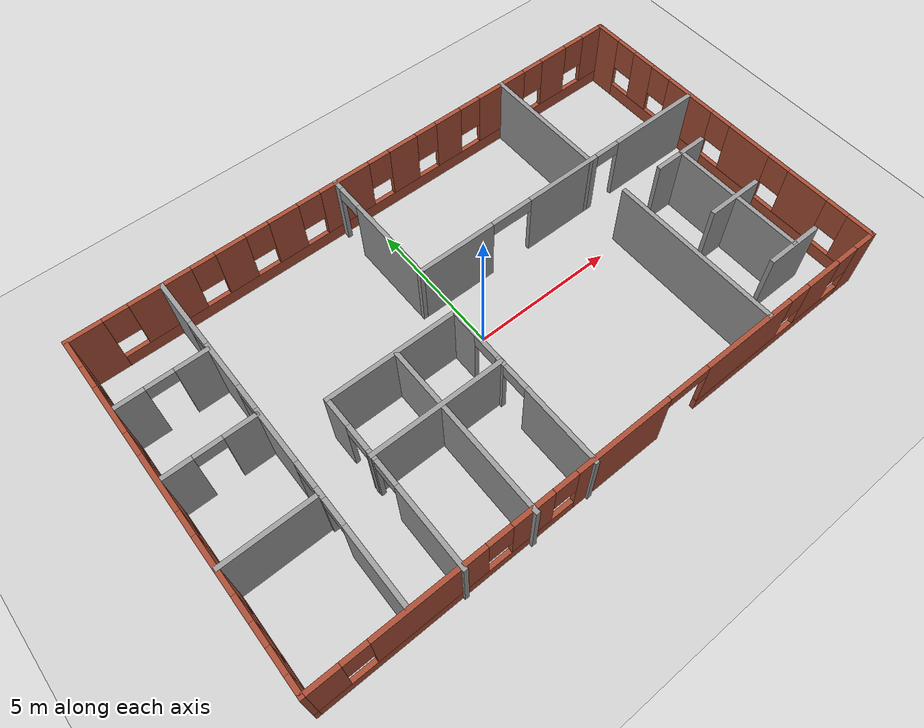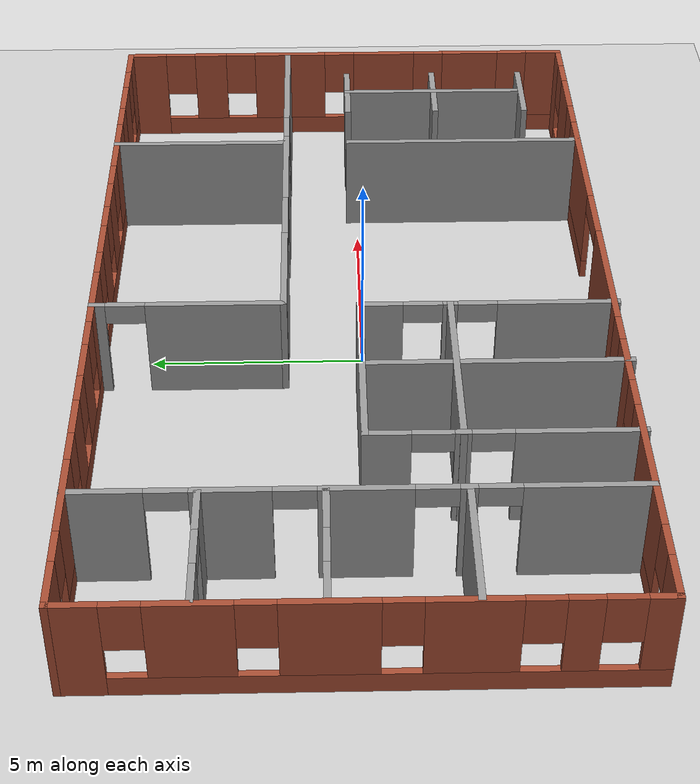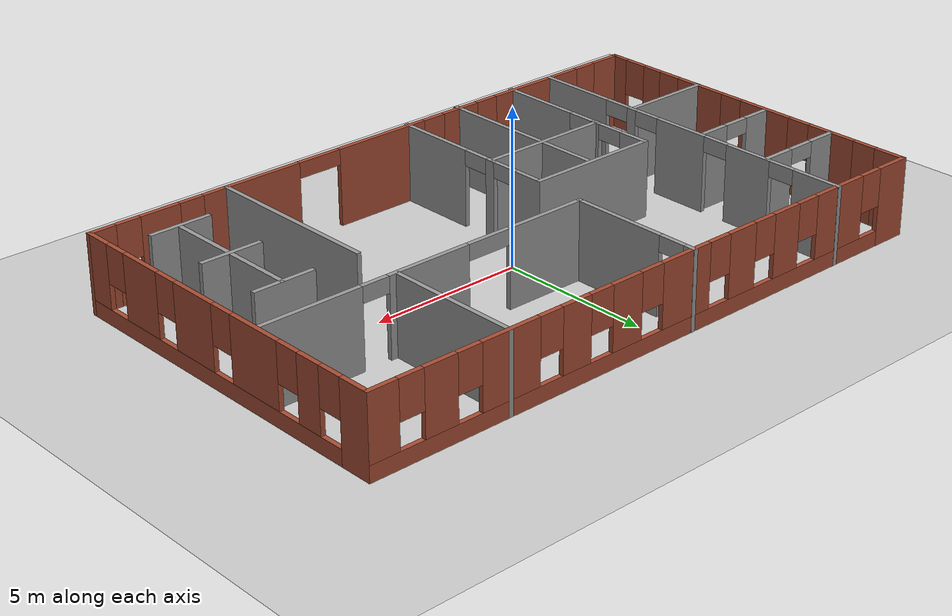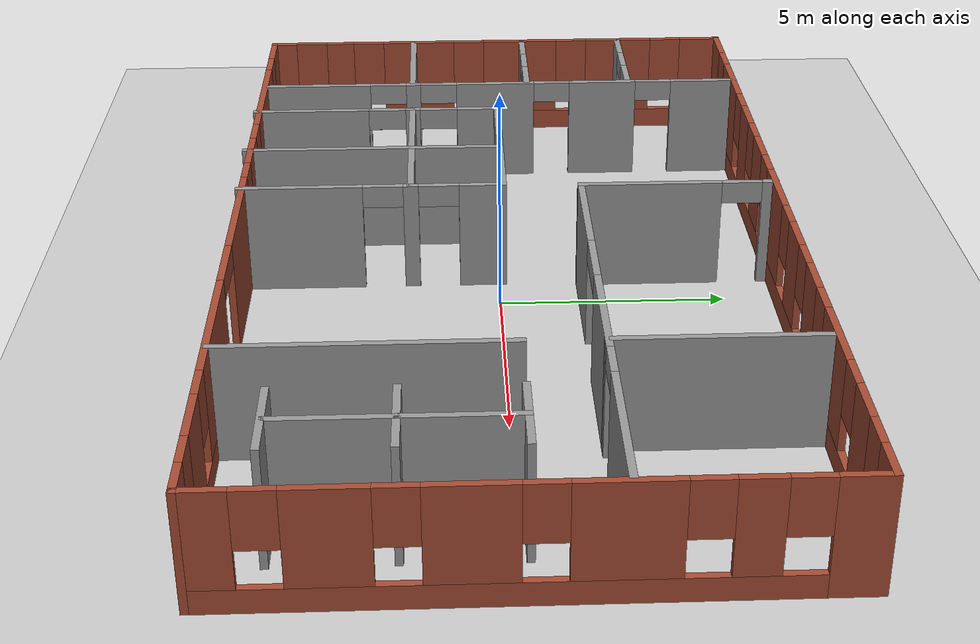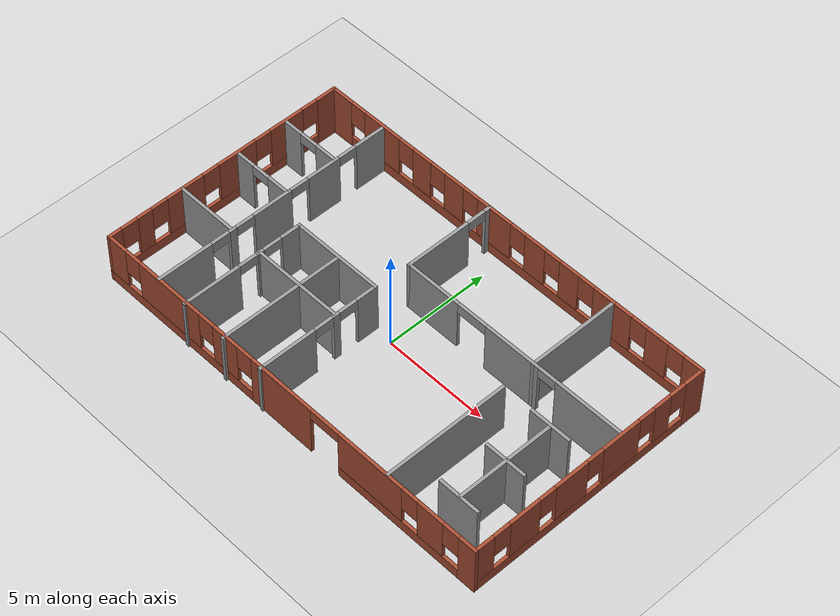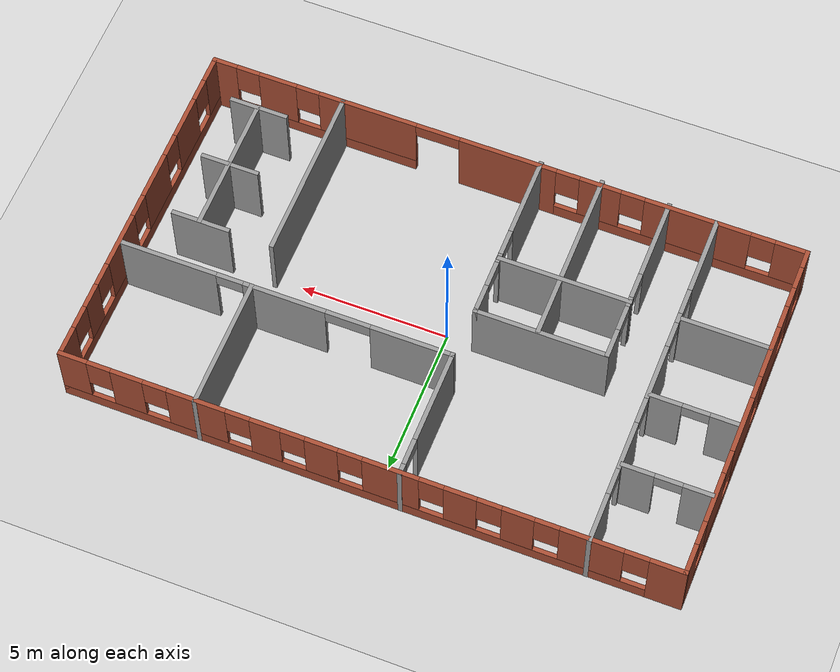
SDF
<sdf version="1.6">
 <world name="default">
  <model name="ground_plane">
   <static>1</static>
   <link name="link">
    <collision name="collision">
     <geometry><plane><normal>0 0 1</normal><size>100 100</size></plane></geometry>
     <surface>
      <contact><collide_bitmask>65535</collide_bitmask></contact>
      <friction><ode><mu>100</mu><mu2>50</mu2></ode></friction>
     </surface>
    </collision>
    <visual name="visual">
     <cast_shadows>0</cast_shadows>
     <geometry><plane><normal>0 0 1</normal><size>100 100</size></plane></geometry>
     <material>
      <script><uri>file://media/materials/scripts/gazebo.material</uri><name>Gazebo/Grey</name></script>
     </material>
    </visual>
   </link>
  </model>
  <model name="model-02">
   <pose>0.22575 0.187769 0 0 -0 0</pose>
   <link name="Wall_0">
    <pose>-10.175 0.053057 0 0 0 -1.5708</pose>
    <visual name="Wall_0_Visual_0">
     <pose>-5.46659 0 1.25 0 -0 0</pose>
     <geometry><box><size>1.06682 0.15 2.5</size></box></geometry>
     <material>
      <script><uri>file://media/materials/scripts/gazebo.material</uri><name>Gazebo/Bricks</name></script>
      <ambient>1 1 1 1</ambient>
     </material>
     <meta><layer>0</layer></meta>
    </visual>
    <collision name="Wall_0_Collision_0">
     <geometry><box><size>1.06682 0.15 2.5</size></box></geometry>
     <pose>-5.46659 0 1.25 0 -0 0</pose>
    </collision>
    <visual name="Wall_0_Visual_1">
     <pose>0.53341 0 0.25 0 -0 0</pose>
     <geometry><box><size>10.9332 0.15 0.5</size></box></geometry>
     <material>
      <script><uri>file://media/materials/scripts/gazebo.material</uri><name>Gazebo/Bricks</name></script>
      <ambient>1 1 1 1</ambient>
     </material>
     <meta><layer>0</layer></meta>
    </visual>
    <collision name="Wall_0_Collision_1">
     <geometry><box><size>10.9332 0.15 0.5</size></box></geometry>
     <pose>0.53341 0 0.25 0 -0 0</pose>
    </collision>
    <visual name="Wall_0_Visual_2">
     <pose>-3.26711 0 1.5 0 -0 0</pose>
     <geometry><box><size>1.73215 0.15 2</size></box></geometry>
     <material>
      <script><uri>file://media/materials/scripts/gazebo.material</uri><name>Gazebo/Bricks</name></script>
      <ambient>1 1 1 1</ambient>
     </material>
     <meta><layer>0</layer></meta>
    </visual>
    <collision name="Wall_0_Collision_2">
     <geometry><box><size>1.73215 0.15 2</size></box></geometry>
     <pose>-3.26711 0 1.5 0 -0 0</pose>
    </collision>
    <visual name="Wall_0_Visual_3">
     <pose>-0.625092 0 1.5 0 -0 0</pose>
     <geometry><box><size>1.95188 0.15 2</size></box></geometry>
     <material>
      <script><uri>file://media/materials/scripts/gazebo.material</uri><name>Gazebo/Bricks</name></script>
      <ambient>1 1 1 1</ambient>
     </material>
     <meta><layer>0</layer></meta>
    </visual>
    <collision name="Wall_0_Collision_3">
     <geometry><box><size>1.95188 0.15 2</size></box></geometry>
     <pose>-0.625092 0 1.5 0 -0 0</pose>
    </collision>
    <visual name="Wall_0_Visual_4">
     <pose>2.08493 0 1.5 0 -0 0</pose>
     <geometry><box><size>1.86817 0.15 2</size></box></geometry>
     <material>
      <script><uri>file://media/materials/scripts/gazebo.material</uri><name>Gazebo/Bricks</name></script>
      <ambient>1 1 1 1</ambient>
     </material>
     <meta><layer>0</layer></meta>
    </visual>
    <collision name="Wall_0_Collision_4">
     <geometry><box><size>1.86817 0.15 2</size></box></geometry>
     <pose>2.08493 0 1.5 0 -0 0</pose>
    </collision>
    <visual name="Wall_0_Visual_5">
     <pose>4.17762 0 1.5 0 -0 0</pose>
     <geometry><box><size>0.717196 0.15 2</size></box></geometry>
     <material>
      <script><uri>file://media/materials/scripts/gazebo.material</uri><name>Gazebo/Bricks</name></script>
      <ambient>1 1 1 1</ambient>
     </material>
     <meta><layer>0</layer></meta>
    </visual>
    <collision name="Wall_0_Collision_5">
     <geometry><box><size>0.717196 0.15 2</size></box></geometry>
     <pose>4.17762 0 1.5 0 -0 0</pose>
    </collision>
    <visual name="Wall_0_Visual_6">
     <pose>5.66811 0 1.5 0 -0 0</pose>
     <geometry><box><size>0.663785 0.15 2</size></box></geometry>
     <material>
      <script><uri>file://media/materials/scripts/gazebo.material</uri><name>Gazebo/Bricks</name></script>
      <ambient>1 1 1 1</ambient>
     </material>
     <meta><layer>0</layer></meta>
    </visual>
    <collision name="Wall_0_Collision_6">
     <geometry><box><size>0.663785 0.15 2</size></box></geometry>
     <pose>5.66811 0 1.5 0 -0 0</pose>
    </collision>
    <visual name="Wall_0_Visual_7">
     <pose>-4.53318 0 1.9 0 -0 0</pose>
     <geometry><box><size>0.8 0.15 1.2</size></box></geometry>
     <material>
      <script><uri>file://media/materials/scripts/gazebo.material</uri><name>Gazebo/Bricks</name></script>
      <ambient>1 1 1 1</ambient>
     </material>
     <meta><layer>0</layer></meta>
    </visual>
    <collision name="Wall_0_Collision_7">
     <geometry><box><size>0.8 0.15 1.2</size></box></geometry>
     <pose>-4.53318 0 1.9 0 -0 0</pose>
    </collision>
    <visual name="Wall_0_Visual_8">
     <pose>-2.00103 0 1.9 0 -0 0</pose>
     <geometry><box><size>0.8 0.15 1.2</size></box></geometry>
     <material>
      <script><uri>file://media/materials/scripts/gazebo.material</uri><name>Gazebo/Bricks</name></script>
      <ambient>1 1 1 1</ambient>
     </material>
     <meta><layer>0</layer></meta>
    </visual>
    <collision name="Wall_0_Collision_8">
     <geometry><box><size>0.8 0.15 1.2</size></box></geometry>
     <pose>-2.00103 0 1.9 0 -0 0</pose>
    </collision>
    <visual name="Wall_0_Visual_9">
     <pose>0.750848 0 1.9 0 -0 0</pose>
     <geometry><box><size>0.8 0.15 1.2</size></box></geometry>
     <material>
      <script><uri>file://media/materials/scripts/gazebo.material</uri><name>Gazebo/Bricks</name></script>
      <ambient>1 1 1 1</ambient>
     </material>
     <meta><layer>0</layer></meta>
    </visual>
    <collision name="Wall_0_Collision_9">
     <geometry><box><size>0.8 0.15 1.2</size></box></geometry>
     <pose>0.750848 0 1.9 0 -0 0</pose>
    </collision>
    <visual name="Wall_0_Visual_10">
     <pose>3.41902 0 1.9 0 -0 0</pose>
     <geometry><box><size>0.8 0.15 1.2</size></box></geometry>
     <material>
      <script><uri>file://media/materials/scripts/gazebo.material</uri><name>Gazebo/Bricks</name></script>
      <ambient>1 1 1 1</ambient>
     </material>
     <meta><layer>0</layer></meta>
    </visual>
    <collision name="Wall_0_Collision_10">
     <geometry><box><size>0.8 0.15 1.2</size></box></geometry>
     <pose>3.41902 0 1.9 0 -0 0</pose>
    </collision>
    <visual name="Wall_0_Visual_11">
     <pose>4.93621 0 1.9 0 -0 0</pose>
     <geometry><box><size>0.8 0.15 1.2</size></box></geometry>
     <material>
      <script><uri>file://media/materials/scripts/gazebo.material</uri><name>Gazebo/Bricks</name></script>
      <ambient>1 1 1 1</ambient>
     </material>
     <meta><layer>0</layer></meta>
    </visual>
    <collision name="Wall_0_Collision_11">
     <geometry><box><size>0.8 0.15 1.2</size></box></geometry>
     <pose>4.93621 0 1.9 0 -0 0</pose>
    </collision>
   </link>
   <link name="Wall_10">
    <pose>-8.66526 3.2872 0 0 -0 3.14159</pose>
    <visual name="Wall_10_Visual_0">
     <pose>-0.949963 0 1.25 0 -0 0</pose>
     <geometry><box><size>1.10007 0.15 2.5</size></box></geometry>
     <material>
      <script><uri>file://media/materials/scripts/gazebo.material</uri><name>Gazebo/Grey</name></script>
      <ambient>1 1 1 1</ambient>
     </material>
     <meta><layer>0</layer></meta>
    </visual>
    <collision name="Wall_10_Collision_0">
     <geometry><box><size>1.10007 0.15 2.5</size></box></geometry>
     <pose>-0.949963 0 1.25 0 -0 0</pose>
    </collision>
    <visual name="Wall_10_Visual_1">
     <pose>1.00004 0 1.25 0 -0 0</pose>
     <geometry><box><size>0.999926 0.15 2.5</size></box></geometry>
     <material>
      <script><uri>file://media/materials/scripts/gazebo.material</uri><name>Gazebo/Grey</name></script>
      <ambient>1 1 1 1</ambient>
     </material>
     <meta><layer>0</layer></meta>
    </visual>
    <collision name="Wall_10_Collision_1">
     <geometry><box><size>0.999926 0.15 2.5</size></box></geometry>
     <pose>1.00004 0 1.25 0 -0 0</pose>
    </collision>
    <visual name="Wall_10_Visual_2">
     <pose>0.050074 0 2.25 0 -0 0</pose>
     <geometry><box><size>0.9 0.15 0.5</size></box></geometry>
     <material>
      <script><uri>file://media/materials/scripts/gazebo.material</uri><name>Gazebo/Grey</name></script>
      <ambient>1 1 1 1</ambient>
     </material>
     <meta><layer>0</layer></meta>
    </visual>
    <collision name="Wall_10_Collision_2">
     <geometry><box><size>0.9 0.15 0.5</size></box></geometry>
     <pose>0.050074 0 2.25 0 -0 0</pose>
    </collision>
   </link>
   <link name="Wall_12">
    <pose>-8.66526 0.722887 0 0 -0 3.14159</pose>
    <visual name="Wall_12_Visual_0">
     <pose>-0.949963 0 1.25 0 -0 0</pose>
     <geometry><box><size>1.10007 0.15 2.5</size></box></geometry>
     <material>
      <script><uri>file://media/materials/scripts/gazebo.material</uri><name>Gazebo/Grey</name></script>
      <ambient>1 1 1 1</ambient>
     </material>
     <meta><layer>0</layer></meta>
    </visual>
    <collision name="Wall_12_Collision_0">
     <geometry><box><size>1.10007 0.15 2.5</size></box></geometry>
     <pose>-0.949963 0 1.25 0 -0 0</pose>
    </collision>
    <visual name="Wall_12_Visual_1">
     <pose>1.00004 0 1.25 0 -0 0</pose>
     <geometry><box><size>0.999926 0.15 2.5</size></box></geometry>
     <material>
      <script><uri>file://media/materials/scripts/gazebo.material</uri><name>Gazebo/Grey</name></script>
      <ambient>1 1 1 1</ambient>
     </material>
     <meta><layer>0</layer></meta>
    </visual>
    <collision name="Wall_12_Collision_1">
     <geometry><box><size>0.999926 0.15 2.5</size></box></geometry>
     <pose>1.00004 0 1.25 0 -0 0</pose>
    </collision>
    <visual name="Wall_12_Visual_2">
     <pose>0.050074 0 2.25 0 -0 0</pose>
     <geometry><box><size>0.9 0.15 0.5</size></box></geometry>
     <material>
      <script><uri>file://media/materials/scripts/gazebo.material</uri><name>Gazebo/Grey</name></script>
      <ambient>1 1 1 1</ambient>
     </material>
     <meta><layer>0</layer></meta>
    </visual>
    <collision name="Wall_12_Collision_2">
     <geometry><box><size>0.9 0.15 0.5</size></box></geometry>
     <pose>0.050074 0 2.25 0 -0 0</pose>
    </collision>
   </link>
   <link name="Wall_14">
    <collision name="Wall_14_Collision">
     <geometry><box><size>3 0.15 2.5</size></box></geometry>
     <pose>0 0 1.25 0 -0 0</pose>
    </collision>
    <visual name="Wall_14_Visual">
     <pose>0 0 1.25 0 -0 0</pose>
     <geometry><box><size>3 0.15 2.5</size></box></geometry>
     <material>
      <script><uri>file://media/materials/scripts/gazebo.material</uri><name>Gazebo/Grey</name></script>
      <ambient>1 1 1 1</ambient>
     </material>
     <meta><layer>0</layer></meta>
    </visual>
    <pose>-8.719 -2.16168 0 0 -0 3.14159</pose>
   </link>
   <link name="Wall_2">
    <pose>0 5.97806 0 0 -0 0</pose>
    <visual name="Wall_2_Visual_0">
     <pose>-9.65114 0 1.25 0 -0 0</pose>
     <geometry><box><size>1.19772 0.15 2.5</size></box></geometry>
     <material>
      <script><uri>file://media/materials/scripts/gazebo.material</uri><name>Gazebo/Bricks</name></script>
      <ambient>1 1 1 1</ambient>
     </material>
     <meta><layer>0</layer></meta>
    </visual>
    <collision name="Wall_2_Collision_0">
     <geometry><box><size>1.19772 0.15 2.5</size></box></geometry>
     <pose>-9.65114 0 1.25 0 -0 0</pose>
    </collision>
    <visual name="Wall_2_Visual_1">
     <pose>0.598862 0 0.25 0 -0 0</pose>
     <geometry><box><size>19.3023 0.15 0.5</size></box></geometry>
     <material>
      <script><uri>file://media/materials/scripts/gazebo.material</uri><name>Gazebo/Bricks</name></script>
      <ambient>1 1 1 1</ambient>
     </material>
     <meta><layer>0</layer></meta>
    </visual>
    <collision name="Wall_2_Collision_1">
     <geometry><box><size>19.3023 0.15 0.5</size></box></geometry>
     <pose>0.598862 0 0.25 0 -0 0</pose>
    </collision>
    <visual name="Wall_2_Visual_2">
     <pose>-7.23766 0 1.5 0 -0 0</pose>
     <geometry><box><size>2.02923 0.15 2</size></box></geometry>
     <material>
      <script><uri>file://media/materials/scripts/gazebo.material</uri><name>Gazebo/Bricks</name></script>
      <ambient>1 1 1 1</ambient>
     </material>
     <meta><layer>0</layer></meta>
    </visual>
    <collision name="Wall_2_Collision_2">
     <geometry><box><size>2.02923 0.15 2</size></box></geometry>
     <pose>-7.23766 0 1.5 0 -0 0</pose>
    </collision>
    <visual name="Wall_2_Visual_3">
     <pose>-4.90335 0 1.5 0 -0 0</pose>
     <geometry><box><size>1.03939 0.15 2</size></box></geometry>
     <material>
      <script><uri>file://media/materials/scripts/gazebo.material</uri><name>Gazebo/Bricks</name></script>
      <ambient>1 1 1 1</ambient>
     </material>
     <meta><layer>0</layer></meta>
    </visual>
    <collision name="Wall_2_Collision_3">
     <geometry><box><size>1.03939 0.15 2</size></box></geometry>
     <pose>-4.90335 0 1.5 0 -0 0</pose>
    </collision>
    <visual name="Wall_2_Visual_4">
     <pose>-3.05186 0 1.5 0 -0 0</pose>
     <geometry><box><size>1.0636 0.15 2</size></box></geometry>
     <material>
      <script><uri>file://media/materials/scripts/gazebo.material</uri><name>Gazebo/Bricks</name></script>
      <ambient>1 1 1 1</ambient>
     </material>
     <meta><layer>0</layer></meta>
    </visual>
    <collision name="Wall_2_Collision_4">
     <geometry><box><size>1.0636 0.15 2</size></box></geometry>
     <pose>-3.05186 0 1.5 0 -0 0</pose>
    </collision>
    <visual name="Wall_2_Visual_5">
     <pose>-0.796768 0 1.5 0 -0 0</pose>
     <geometry><box><size>1.84658 0.15 2</size></box></geometry>
     <material>
      <script><uri>file://media/materials/scripts/gazebo.material</uri><name>Gazebo/Bricks</name></script>
      <ambient>1 1 1 1</ambient>
     </material>
     <meta><layer>0</layer></meta>
    </visual>
    <collision name="Wall_2_Collision_5">
     <geometry><box><size>1.84658 0.15 2</size></box></geometry>
     <pose>-0.796768 0 1.5 0 -0 0</pose>
    </collision>
    <visual name="Wall_2_Visual_6">
     <pose>1.4675 0 1.5 0 -0 0</pose>
     <geometry><box><size>1.08195 0.15 2</size></box></geometry>
     <material>
      <script><uri>file://media/materials/scripts/gazebo.material</uri><name>Gazebo/Bricks</name></script>
      <ambient>1 1 1 1</ambient>
     </material>
     <meta><layer>0</layer></meta>
    </visual>
    <collision name="Wall_2_Collision_6">
     <geometry><box><size>1.08195 0.15 2</size></box></geometry>
     <pose>1.4675 0 1.5 0 -0 0</pose>
    </collision>
    <visual name="Wall_2_Visual_7">
     <pose>3.31485 0 1.5 0 -0 0</pose>
     <geometry><box><size>1.01276 0.15 2</size></box></geometry>
     <material>
      <script><uri>file://media/materials/scripts/gazebo.material</uri><name>Gazebo/Bricks</name></script>
      <ambient>1 1 1 1</ambient>
     </material>
     <meta><layer>0</layer></meta>
    </visual>
    <collision name="Wall_2_Collision_7">
     <geometry><box><size>1.01276 0.15 2</size></box></geometry>
     <pose>3.31485 0 1.5 0 -0 0</pose>
    </collision>
    <visual name="Wall_2_Visual_8">
     <pose>5.60502 0 1.5 0 -0 0</pose>
     <geometry><box><size>1.96757 0.15 2</size></box></geometry>
     <material>
      <script><uri>file://media/materials/scripts/gazebo.material</uri><name>Gazebo/Bricks</name></script>
      <ambient>1 1 1 1</ambient>
     </material>
     <meta><layer>0</layer></meta>
    </visual>
    <collision name="Wall_2_Collision_8">
     <geometry><box><size>1.96757 0.15 2</size></box></geometry>
     <pose>5.60502 0 1.5 0 -0 0</pose>
    </collision>
    <visual name="Wall_2_Visual_9">
     <pose>7.92978 0 1.5 0 -0 0</pose>
     <geometry><box><size>1.08195 0.15 2</size></box></geometry>
     <material>
      <script><uri>file://media/materials/scripts/gazebo.material</uri><name>Gazebo/Bricks</name></script>
      <ambient>1 1 1 1</ambient>
     </material>
     <meta><layer>0</layer></meta>
    </visual>
    <collision name="Wall_2_Collision_9">
     <geometry><box><size>1.08195 0.15 2</size></box></geometry>
     <pose>7.92978 0 1.5 0 -0 0</pose>
    </collision>
    <visual name="Wall_2_Visual_10">
     <pose>9.76038 0 1.5 0 -0 0</pose>
     <geometry><box><size>0.979241 0.15 2</size></box></geometry>
     <material>
      <script><uri>file://media/materials/scripts/gazebo.material</uri><name>Gazebo/Bricks</name></script>
      <ambient>1 1 1 1</ambient>
     </material>
     <meta><layer>0</layer></meta>
    </visual>
    <collision name="Wall_2_Collision_10">
     <geometry><box><size>0.979241 0.15 2</size></box></geometry>
     <pose>9.76038 0 1.5 0 -0 0</pose>
    </collision>
    <visual name="Wall_2_Visual_11">
     <pose>-8.65228 0 1.9 0 -0 0</pose>
     <geometry><box><size>0.8 0.15 1.2</size></box></geometry>
     <material>
      <script><uri>file://media/materials/scripts/gazebo.material</uri><name>Gazebo/Bricks</name></script>
      <ambient>1 1 1 1</ambient>
     </material>
     <meta><layer>0</layer></meta>
    </visual>
    <collision name="Wall_2_Collision_11">
     <geometry><box><size>0.8 0.15 1.2</size></box></geometry>
     <pose>-8.65228 0 1.9 0 -0 0</pose>
    </collision>
    <visual name="Wall_2_Visual_12">
     <pose>-5.82304 0 1.9 0 -0 0</pose>
     <geometry><box><size>0.8 0.15 1.2</size></box></geometry>
     <material>
      <script><uri>file://media/materials/scripts/gazebo.material</uri><name>Gazebo/Bricks</name></script>
      <ambient>1 1 1 1</ambient>
     </material>
     <meta><layer>0</layer></meta>
    </visual>
    <collision name="Wall_2_Collision_12">
     <geometry><box><size>0.8 0.15 1.2</size></box></geometry>
     <pose>-5.82304 0 1.9 0 -0 0</pose>
    </collision>
    <visual name="Wall_2_Visual_13">
     <pose>-3.98365 0 1.9 0 -0 0</pose>
     <geometry><box><size>0.8 0.15 1.2</size></box></geometry>
     <material>
      <script><uri>file://media/materials/scripts/gazebo.material</uri><name>Gazebo/Bricks</name></script>
      <ambient>1 1 1 1</ambient>
     </material>
     <meta><layer>0</layer></meta>
    </visual>
    <collision name="Wall_2_Collision_13">
     <geometry><box><size>0.8 0.15 1.2</size></box></geometry>
     <pose>-3.98365 0 1.9 0 -0 0</pose>
    </collision>
    <visual name="Wall_2_Visual_14">
     <pose>-2.12006 0 1.9 0 -0 0</pose>
     <geometry><box><size>0.8 0.15 1.2</size></box></geometry>
     <material>
      <script><uri>file://media/materials/scripts/gazebo.material</uri><name>Gazebo/Bricks</name></script>
      <ambient>1 1 1 1</ambient>
     </material>
     <meta><layer>0</layer></meta>
    </visual>
    <collision name="Wall_2_Collision_14">
     <geometry><box><size>0.8 0.15 1.2</size></box></geometry>
     <pose>-2.12006 0 1.9 0 -0 0</pose>
    </collision>
    <visual name="Wall_2_Visual_15">
     <pose>0.526522 0 1.9 0 -0 0</pose>
     <geometry><box><size>0.8 0.15 1.2</size></box></geometry>
     <material>
      <script><uri>file://media/materials/scripts/gazebo.material</uri><name>Gazebo/Bricks</name></script>
      <ambient>1 1 1 1</ambient>
     </material>
     <meta><layer>0</layer></meta>
    </visual>
    <collision name="Wall_2_Collision_15">
     <geometry><box><size>0.8 0.15 1.2</size></box></geometry>
     <pose>0.526522 0 1.9 0 -0 0</pose>
    </collision>
    <visual name="Wall_2_Visual_16">
     <pose>2.40847 0 1.9 0 -0 0</pose>
     <geometry><box><size>0.8 0.15 1.2</size></box></geometry>
     <material>
      <script><uri>file://media/materials/scripts/gazebo.material</uri><name>Gazebo/Bricks</name></script>
      <ambient>1 1 1 1</ambient>
     </material>
     <meta><layer>0</layer></meta>
    </visual>
    <collision name="Wall_2_Collision_16">
     <geometry><box><size>0.8 0.15 1.2</size></box></geometry>
     <pose>2.40847 0 1.9 0 -0 0</pose>
    </collision>
    <visual name="Wall_2_Visual_17">
     <pose>4.22123 0 1.9 0 -0 0</pose>
     <geometry><box><size>0.8 0.15 1.2</size></box></geometry>
     <material>
      <script><uri>file://media/materials/scripts/gazebo.material</uri><name>Gazebo/Bricks</name></script>
      <ambient>1 1 1 1</ambient>
     </material>
     <meta><layer>0</layer></meta>
    </visual>
    <collision name="Wall_2_Collision_17">
     <geometry><box><size>0.8 0.15 1.2</size></box></geometry>
     <pose>4.22123 0 1.9 0 -0 0</pose>
    </collision>
    <visual name="Wall_2_Visual_18">
     <pose>6.98881 0 1.9 0 -0 0</pose>
     <geometry><box><size>0.8 0.15 1.2</size></box></geometry>
     <material>
      <script><uri>file://media/materials/scripts/gazebo.material</uri><name>Gazebo/Bricks</name></script>
      <ambient>1 1 1 1</ambient>
     </material>
     <meta><layer>0</layer></meta>
    </visual>
    <collision name="Wall_2_Collision_18">
     <geometry><box><size>0.8 0.15 1.2</size></box></geometry>
     <pose>6.98881 0 1.9 0 -0 0</pose>
    </collision>
    <visual name="Wall_2_Visual_19">
     <pose>8.87076 0 1.9 0 -0 0</pose>
     <geometry><box><size>0.8 0.15 1.2</size></box></geometry>
     <material>
      <script><uri>file://media/materials/scripts/gazebo.material</uri><name>Gazebo/Bricks</name></script>
      <ambient>1 1 1 1</ambient>
     </material>
     <meta><layer>0</layer></meta>
    </visual>
    <collision name="Wall_2_Collision_19">
     <geometry><box><size>0.8 0.15 1.2</size></box></geometry>
     <pose>8.87076 0 1.9 0 -0 0</pose>
    </collision>
   </link>
   <link name="Wall_26">
    <pose>-1.10403 3.80806 0 0 -0 1.57081</pose>
    <visual name="Wall_26_Visual_0">
     <pose>-0.640492 0 1.25 0 -0 0</pose>
     <geometry><box><size>3.21902 0.15 2.5</size></box></geometry>
     <material>
      <script><uri>file://media/materials/scripts/gazebo.material</uri><name>Gazebo/Grey</name></script>
      <ambient>1 1 1 1</ambient>
     </material>
     <meta><layer>0</layer></meta>
    </visual>
    <collision name="Wall_26_Collision_0">
     <geometry><box><size>3.21902 0.15 2.5</size></box></geometry>
     <pose>-0.640492 0 1.25 0 -0 0</pose>
    </collision>
    <visual name="Wall_26_Visual_1">
     <pose>2.05951 0 1.25 0 -0 0</pose>
     <geometry><box><size>0.380984 0.15 2.5</size></box></geometry>
     <material>
      <script><uri>file://media/materials/scripts/gazebo.material</uri><name>Gazebo/Grey</name></script>
      <ambient>1 1 1 1</ambient>
     </material>
     <meta><layer>0</layer></meta>
    </visual>
    <collision name="Wall_26_Collision_1">
     <geometry><box><size>0.380984 0.15 2.5</size></box></geometry>
     <pose>2.05951 0 1.25 0 -0 0</pose>
    </collision>
    <visual name="Wall_26_Visual_2">
     <pose>1.41902 0 2.25 0 -0 0</pose>
     <geometry><box><size>0.9 0.15 0.5</size></box></geometry>
     <material>
      <script><uri>file://media/materials/scripts/gazebo.material</uri><name>Gazebo/Grey</name></script>
      <ambient>1 1 1 1</ambient>
     </material>
     <meta><layer>0</layer></meta>
    </visual>
    <collision name="Wall_26_Collision_2">
     <geometry><box><size>0.9 0.15 0.5</size></box></geometry>
     <pose>1.41902 0 2.25 0 -0 0</pose>
    </collision>
   </link>
   <link name="Wall_28">
    <pose>4.4795 1.63306 0 0 -0 0</pose>
    <visual name="Wall_28_Visual_0">
     <pose>-4.25709 0 1.25 0 -0 0</pose>
     <geometry><box><size>2.80283 0.15 2.5</size></box></geometry>
     <material>
      <script><uri>file://media/materials/scripts/gazebo.material</uri><name>Gazebo/Grey</name></script>
      <ambient>1 1 1 1</ambient>
     </material>
     <meta><layer>0</layer></meta>
    </visual>
    <collision name="Wall_28_Collision_0">
     <geometry><box><size>2.80283 0.15 2.5</size></box></geometry>
     <pose>-4.25709 0 1.25 0 -0 0</pose>
    </collision>
    <visual name="Wall_28_Visual_1">
     <pose>0.041694 0 1.25 0 -0 0</pose>
     <geometry><box><size>2.79473 0.15 2.5</size></box></geometry>
     <material>
      <script><uri>file://media/materials/scripts/gazebo.material</uri><name>Gazebo/Grey</name></script>
      <ambient>1 1 1 1</ambient>
     </material>
     <meta><layer>0</layer></meta>
    </visual>
    <collision name="Wall_28_Collision_1">
     <geometry><box><size>2.79473 0.15 2.5</size></box></geometry>
     <pose>0.041694 0 1.25 0 -0 0</pose>
    </collision>
    <visual name="Wall_28_Visual_2">
     <pose>3.99878 0 1.25 0 -0 0</pose>
     <geometry><box><size>3.31944 0.15 2.5</size></box></geometry>
     <material>
      <script><uri>file://media/materials/scripts/gazebo.material</uri><name>Gazebo/Grey</name></script>
      <ambient>1 1 1 1</ambient>
     </material>
     <meta><layer>0</layer></meta>
    </visual>
    <collision name="Wall_28_Collision_2">
     <geometry><box><size>3.31944 0.15 2.5</size></box></geometry>
     <pose>3.99878 0 1.25 0 -0 0</pose>
    </collision>
    <visual name="Wall_28_Visual_3">
     <pose>-2.10567 0 2.25 0 -0 0</pose>
     <geometry><box><size>1.5 0.15 0.5</size></box></geometry>
     <material>
      <script><uri>file://media/materials/scripts/gazebo.material</uri><name>Gazebo/Grey</name></script>
      <ambient>1 1 1 1</ambient>
     </material>
     <meta><layer>0</layer></meta>
    </visual>
    <collision name="Wall_28_Collision_3">
     <geometry><box><size>1.5 0.15 0.5</size></box></geometry>
     <pose>-2.10567 0 2.25 0 -0 0</pose>
    </collision>
    <visual name="Wall_28_Visual_4">
     <pose>1.88906 0 2.25 0 -0 0</pose>
     <geometry><box><size>0.9 0.15 0.5</size></box></geometry>
     <material>
      <script><uri>file://media/materials/scripts/gazebo.material</uri><name>Gazebo/Grey</name></script>
      <ambient>1 1 1 1</ambient>
     </material>
     <meta><layer>0</layer></meta>
    </visual>
    <collision name="Wall_28_Collision_4">
     <geometry><box><size>0.9 0.15 0.5</size></box></geometry>
     <pose>1.88906 0 2.25 0 -0 0</pose>
    </collision>
   </link>
   <link name="Wall_3">
    <pose>10.175 0.053057 0 0 0 -1.5708</pose>
    <visual name="Wall_3_Visual_0">
     <pose>-5.47727 0 1.25 0 -0 0</pose>
     <geometry><box><size>1.04546 0.15 2.5</size></box></geometry>
     <material>
      <script><uri>file://media/materials/scripts/gazebo.material</uri><name>Gazebo/Bricks</name></script>
      <ambient>1 1 1 1</ambient>
     </material>
     <meta><layer>0</layer></meta>
    </visual>
    <collision name="Wall_3_Collision_0">
     <geometry><box><size>1.04546 0.15 2.5</size></box></geometry>
     <pose>-5.47727 0 1.25 0 -0 0</pose>
    </collision>
    <visual name="Wall_3_Visual_1">
     <pose>0.522727 0 0.25 0 -0 0</pose>
     <geometry><box><size>10.9545 0.15 0.5</size></box></geometry>
     <material>
      <script><uri>file://media/materials/scripts/gazebo.material</uri><name>Gazebo/Bricks</name></script>
      <ambient>1 1 1 1</ambient>
     </material>
     <meta><layer>0</layer></meta>
    </visual>
    <collision name="Wall_3_Collision_1">
     <geometry><box><size>10.9545 0.15 0.5</size></box></geometry>
     <pose>0.522727 0 0.25 0 -0 0</pose>
    </collision>
    <visual name="Wall_3_Visual_2">
     <pose>-3.72427 0 1.5 0 -0 0</pose>
     <geometry><box><size>0.860545 0.15 2</size></box></geometry>
     <material>
      <script><uri>file://media/materials/scripts/gazebo.material</uri><name>Gazebo/Bricks</name></script>
      <ambient>1 1 1 1</ambient>
     </material>
     <meta><layer>0</layer></meta>
    </visual>
    <collision name="Wall_3_Collision_2">
     <geometry><box><size>0.860545 0.15 2</size></box></geometry>
     <pose>-3.72427 0 1.5 0 -0 0</pose>
    </collision>
    <visual name="Wall_3_Visual_3">
     <pose>-1.52574 0 1.5 0 -0 0</pose>
     <geometry><box><size>1.93653 0.15 2</size></box></geometry>
     <material>
      <script><uri>file://media/materials/scripts/gazebo.material</uri><name>Gazebo/Bricks</name></script>
      <ambient>1 1 1 1</ambient>
     </material>
     <meta><layer>0</layer></meta>
    </visual>
    <collision name="Wall_3_Collision_3">
     <geometry><box><size>1.93653 0.15 2</size></box></geometry>
     <pose>-1.52574 0 1.5 0 -0 0</pose>
    </collision>
    <visual name="Wall_3_Visual_4">
     <pose>1.0759 0 1.5 0 -0 0</pose>
     <geometry><box><size>1.66675 0.15 2</size></box></geometry>
     <material>
      <script><uri>file://media/materials/scripts/gazebo.material</uri><name>Gazebo/Bricks</name></script>
      <ambient>1 1 1 1</ambient>
     </material>
     <meta><layer>0</layer></meta>
    </visual>
    <collision name="Wall_3_Collision_4">
     <geometry><box><size>1.66675 0.15 2</size></box></geometry>
     <pose>1.0759 0 1.5 0 -0 0</pose>
    </collision>
    <visual name="Wall_3_Visual_5">
     <pose>3.47046 0 1.5 0 -0 0</pose>
     <geometry><box><size>1.52236 0.15 2</size></box></geometry>
     <material>
      <script><uri>file://media/materials/scripts/gazebo.material</uri><name>Gazebo/Bricks</name></script>
      <ambient>1 1 1 1</ambient>
     </material>
     <meta><layer>0</layer></meta>
    </visual>
    <collision name="Wall_3_Collision_5">
     <geometry><box><size>1.52236 0.15 2</size></box></geometry>
     <pose>3.47046 0 1.5 0 -0 0</pose>
    </collision>
    <visual name="Wall_3_Visual_6">
     <pose>5.51582 0 1.5 0 -0 0</pose>
     <geometry><box><size>0.968366 0.15 2</size></box></geometry>
     <material>
      <script><uri>file://media/materials/scripts/gazebo.material</uri><name>Gazebo/Bricks</name></script>
      <ambient>1 1 1 1</ambient>
     </material>
     <meta><layer>0</layer></meta>
    </visual>
    <collision name="Wall_3_Collision_6">
     <geometry><box><size>0.968366 0.15 2</size></box></geometry>
     <pose>5.51582 0 1.5 0 -0 0</pose>
    </collision>
    <visual name="Wall_3_Visual_7">
     <pose>-4.55455 0 1.9 0 -0 0</pose>
     <geometry><box><size>0.8 0.15 1.2</size></box></geometry>
     <material>
      <script><uri>file://media/materials/scripts/gazebo.material</uri><name>Gazebo/Bricks</name></script>
      <ambient>1 1 1 1</ambient>
     </material>
     <meta><layer>0</layer></meta>
    </visual>
    <collision name="Wall_3_Collision_7">
     <geometry><box><size>0.8 0.15 1.2</size></box></geometry>
     <pose>-4.55455 0 1.9 0 -0 0</pose>
    </collision>
    <visual name="Wall_3_Visual_8">
     <pose>-2.894 0 1.9 0 -0 0</pose>
     <geometry><box><size>0.8 0.15 1.2</size></box></geometry>
     <material>
      <script><uri>file://media/materials/scripts/gazebo.material</uri><name>Gazebo/Bricks</name></script>
      <ambient>1 1 1 1</ambient>
     </material>
     <meta><layer>0</layer></meta>
    </visual>
    <collision name="Wall_3_Collision_8">
     <geometry><box><size>0.8 0.15 1.2</size></box></geometry>
     <pose>-2.894 0 1.9 0 -0 0</pose>
    </collision>
    <visual name="Wall_3_Visual_9">
     <pose>-0.157473 0 1.9 0 -0 0</pose>
     <geometry><box><size>0.8 0.15 1.2</size></box></geometry>
     <material>
      <script><uri>file://media/materials/scripts/gazebo.material</uri><name>Gazebo/Bricks</name></script>
      <ambient>1 1 1 1</ambient>
     </material>
     <meta><layer>0</layer></meta>
    </visual>
    <collision name="Wall_3_Collision_9">
     <geometry><box><size>0.8 0.15 1.2</size></box></geometry>
     <pose>-0.157473 0 1.9 0 -0 0</pose>
    </collision>
    <visual name="Wall_3_Visual_10">
     <pose>2.30928 0 1.9 0 -0 0</pose>
     <geometry><box><size>0.8 0.15 1.2</size></box></geometry>
     <material>
      <script><uri>file://media/materials/scripts/gazebo.material</uri><name>Gazebo/Bricks</name></script>
      <ambient>1 1 1 1</ambient>
     </material>
     <meta><layer>0</layer></meta>
    </visual>
    <collision name="Wall_3_Collision_10">
     <geometry><box><size>0.8 0.15 1.2</size></box></geometry>
     <pose>2.30928 0 1.9 0 -0 0</pose>
    </collision>
    <visual name="Wall_3_Visual_11">
     <pose>4.63163 0 1.9 0 -0 0</pose>
     <geometry><box><size>0.8 0.15 1.2</size></box></geometry>
     <material>
      <script><uri>file://media/materials/scripts/gazebo.material</uri><name>Gazebo/Bricks</name></script>
      <ambient>1 1 1 1</ambient>
     </material>
     <meta><layer>0</layer></meta>
    </visual>
    <collision name="Wall_3_Collision_11">
     <geometry><box><size>0.8 0.15 1.2</size></box></geometry>
     <pose>4.63163 0 1.9 0 -0 0</pose>
    </collision>
   </link>
   <link name="Wall_30">
    <collision name="Wall_30_Collision">
     <geometry><box><size>4.5 0.15 2.5</size></box></geometry>
     <pose>0 0 1.25 0 -0 0</pose>
    </collision>
    <visual name="Wall_30_Visual">
     <pose>0 0 1.25 0 -0 0</pose>
     <geometry><box><size>4.5 0.15 2.5</size></box></geometry>
     <material>
      <script><uri>file://media/materials/scripts/gazebo.material</uri><name>Gazebo/Grey</name></script>
      <ambient>1 1 1 1</ambient>
     </material>
     <meta><layer>0</layer></meta>
    </visual>
    <pose>5.63149 3.80627 0 0 -0 1.5708</pose>
   </link>
   <link name="Wall_32">
    <collision name="Wall_32_Collision">
     <geometry><box><size>6 0.15 2.5</size></box></geometry>
     <pose>0 0 1.25 0 -0 0</pose>
    </collision>
    <visual name="Wall_32_Visual">
     <pose>0 0 1.25 0 -0 0</pose>
     <geometry><box><size>6 0.15 2.5</size></box></geometry>
     <material>
      <script><uri>file://media/materials/scripts/gazebo.material</uri><name>Gazebo/Grey</name></script>
      <ambient>1 1 1 1</ambient>
     </material>
     <meta><layer>0</layer></meta>
    </visual>
    <pose>5.62609 -2.90654 0 0 -0 1.5708</pose>
   </link>
   <link name="Wall_34">
    <pose>-5.54817 -3.01582 0 0 -0 1.5708</pose>
    <visual name="Wall_34_Visual_0">
     <pose>-1.59858 0 1.25 0 -0 0</pose>
     <geometry><box><size>2.80283 0.15 2.5</size></box></geometry>
     <material>
      <script><uri>file://media/materials/scripts/gazebo.material</uri><name>Gazebo/Grey</name></script>
      <ambient>1 1 1 1</ambient>
     </material>
     <meta><layer>0</layer></meta>
    </visual>
    <collision name="Wall_34_Collision_0">
     <geometry><box><size>2.80283 0.15 2.5</size></box></geometry>
     <pose>-1.59858 0 1.25 0 -0 0</pose>
    </collision>
    <visual name="Wall_34_Visual_1">
     <pose>0.878194 0 1.25 0 -0 0</pose>
     <geometry><box><size>0.350724 0.15 2.5</size></box></geometry>
     <material>
      <script><uri>file://media/materials/scripts/gazebo.material</uri><name>Gazebo/Grey</name></script>
      <ambient>1 1 1 1</ambient>
     </material>
     <meta><layer>0</layer></meta>
    </visual>
    <collision name="Wall_34_Collision_1">
     <geometry><box><size>0.350724 0.15 2.5</size></box></geometry>
     <pose>0.878194 0 1.25 0 -0 0</pose>
    </collision>
    <visual name="Wall_34_Visual_2">
     <pose>2.47678 0 1.25 0 -0 0</pose>
     <geometry><box><size>1.04644 0.15 2.5</size></box></geometry>
     <material>
      <script><uri>file://media/materials/scripts/gazebo.material</uri><name>Gazebo/Grey</name></script>
      <ambient>1 1 1 1</ambient>
     </material>
     <meta><layer>0</layer></meta>
    </visual>
    <collision name="Wall_34_Collision_2">
     <geometry><box><size>1.04644 0.15 2.5</size></box></geometry>
     <pose>2.47678 0 1.25 0 -0 0</pose>
    </collision>
    <visual name="Wall_34_Visual_3">
     <pose>0.252832 0 2.25 0 -0 0</pose>
     <geometry><box><size>0.9 0.15 0.5</size></box></geometry>
     <material>
      <script><uri>file://media/materials/scripts/gazebo.material</uri><name>Gazebo/Grey</name></script>
      <ambient>1 1 1 1</ambient>
     </material>
     <meta><layer>0</layer></meta>
    </visual>
    <collision name="Wall_34_Collision_3">
     <geometry><box><size>0.9 0.15 0.5</size></box></geometry>
     <pose>0.252832 0 2.25 0 -0 0</pose>
    </collision>
    <visual name="Wall_34_Visual_4">
     <pose>1.50356 0 2.25 0 -0 0</pose>
     <geometry><box><size>0.9 0.15 0.5</size></box></geometry>
     <material>
      <script><uri>file://media/materials/scripts/gazebo.material</uri><name>Gazebo/Grey</name></script>
      <ambient>1 1 1 1</ambient>
     </material>
     <meta><layer>0</layer></meta>
    </visual>
    <collision name="Wall_34_Collision_4">
     <geometry><box><size>0.9 0.15 0.5</size></box></geometry>
     <pose>1.50356 0 2.25 0 -0 0</pose>
    </collision>
   </link>
   <link name="Wall_35">
    <collision name="Wall_35_Collision">
     <geometry><box><size>4.5 0.15 2.5</size></box></geometry>
     <pose>0 0 1.25 0 -0 0</pose>
    </collision>
    <visual name="Wall_35_Visual">
     <pose>0 0 1.25 0 -0 0</pose>
     <geometry><box><size>4.5 0.15 2.5</size></box></geometry>
     <material>
      <script><uri>file://media/materials/scripts/gazebo.material</uri><name>Gazebo/Grey</name></script>
      <ambient>1 1 1 1</ambient>
     </material>
     <meta><layer>0</layer></meta>
    </visual>
    <pose>-3.37317 -0.090818 0 0 -0 0</pose>
   </link>
   <link name="Wall_36">
    <pose>-1.19817 -3.01582 0 0 0 -1.5708</pose>
    <visual name="Wall_36_Visual_0">
     <pose>-2.4706 0 1.25 0 -0 0</pose>
     <geometry><box><size>1.0588 0.15 2.5</size></box></geometry>
     <material>
      <script><uri>file://media/materials/scripts/gazebo.material</uri><name>Gazebo/Grey</name></script>
      <ambient>1 1 1 1</ambient>
     </material>
     <meta><layer>0</layer></meta>
    </visual>
    <collision name="Wall_36_Collision_0">
     <geometry><box><size>1.0588 0.15 2.5</size></box></geometry>
     <pose>-2.4706 0 1.25 0 -0 0</pose>
    </collision>
    <visual name="Wall_36_Visual_1">
     <pose>-0.871725 0 1.25 0 -0 0</pose>
     <geometry><box><size>0.338956 0.15 2.5</size></box></geometry>
     <material>
      <script><uri>file://media/materials/scripts/gazebo.material</uri><name>Gazebo/Grey</name></script>
      <ambient>1 1 1 1</ambient>
     </material>
     <meta><layer>0</layer></meta>
    </visual>
    <collision name="Wall_36_Collision_1">
     <geometry><box><size>0.338956 0.15 2.5</size></box></geometry>
     <pose>-0.871725 0 1.25 0 -0 0</pose>
    </collision>
    <visual name="Wall_36_Visual_2">
     <pose>1.59888 0 1.25 0 -0 0</pose>
     <geometry><box><size>2.80225 0.15 2.5</size></box></geometry>
     <material>
      <script><uri>file://media/materials/scripts/gazebo.material</uri><name>Gazebo/Grey</name></script>
      <ambient>1 1 1 1</ambient>
     </material>
     <meta><layer>0</layer></meta>
    </visual>
    <collision name="Wall_36_Collision_2">
     <geometry><box><size>2.80225 0.15 2.5</size></box></geometry>
     <pose>1.59888 0 1.25 0 -0 0</pose>
    </collision>
    <visual name="Wall_36_Visual_3">
     <pose>-1.4912 0 2.25 0 -0 0</pose>
     <geometry><box><size>0.9 0.15 0.5</size></box></geometry>
     <material>
      <script><uri>file://media/materials/scripts/gazebo.material</uri><name>Gazebo/Grey</name></script>
      <ambient>1 1 1 1</ambient>
     </material>
     <meta><layer>0</layer></meta>
    </visual>
    <collision name="Wall_36_Collision_3">
     <geometry><box><size>0.9 0.15 0.5</size></box></geometry>
     <pose>-1.4912 0 2.25 0 -0 0</pose>
    </collision>
    <visual name="Wall_36_Visual_4">
     <pose>-0.252247 0 2.25 0 -0 0</pose>
     <geometry><box><size>0.9 0.15 0.5</size></box></geometry>
     <material>
      <script><uri>file://media/materials/scripts/gazebo.material</uri><name>Gazebo/Grey</name></script>
      <ambient>1 1 1 1</ambient>
     </material>
     <meta><layer>0</layer></meta>
    </visual>
    <collision name="Wall_36_Collision_4">
     <geometry><box><size>0.9 0.15 0.5</size></box></geometry>
     <pose>-0.252247 0 2.25 0 -0 0</pose>
    </collision>
   </link>
   <link name="Wall_4">
    <pose>0 -5.87194 0 0 -0 3.14159</pose>
    <visual name="Wall_4_Visual_0">
     <pose>-9.81545 0 1.25 0 -0 0</pose>
     <geometry><box><size>0.869092 0.15 2.5</size></box></geometry>
     <material>
      <script><uri>file://media/materials/scripts/gazebo.material</uri><name>Gazebo/Bricks</name></script>
      <ambient>1 1 1 1</ambient>
     </material>
     <meta><layer>0</layer></meta>
    </visual>
    <collision name="Wall_4_Collision_0">
     <geometry><box><size>0.869092 0.15 2.5</size></box></geometry>
     <pose>-9.81545 0 1.25 0 -0 0</pose>
    </collision>
    <visual name="Wall_4_Visual_1">
     <pose>0.104037 0 1.25 0 -0 0</pose>
     <geometry><box><size>3.32184 0.15 2.5</size></box></geometry>
     <material>
      <script><uri>file://media/materials/scripts/gazebo.material</uri><name>Gazebo/Bricks</name></script>
      <ambient>1 1 1 1</ambient>
     </material>
     <meta><layer>0</layer></meta>
    </visual>
    <collision name="Wall_4_Collision_1">
     <geometry><box><size>3.32184 0.15 2.5</size></box></geometry>
     <pose>0.104037 0 1.25 0 -0 0</pose>
    </collision>
    <visual name="Wall_4_Visual_2">
     <pose>-6.21889 0 0.25 0 -0 0</pose>
     <geometry><box><size>6.32403 0.15 0.5</size></box></geometry>
     <material>
      <script><uri>file://media/materials/scripts/gazebo.material</uri><name>Gazebo/Bricks</name></script>
      <ambient>1 1 1 1</ambient>
     </material>
     <meta><layer>0</layer></meta>
    </visual>
    <collision name="Wall_4_Collision_2">
     <geometry><box><size>6.32403 0.15 0.5</size></box></geometry>
     <pose>-6.21889 0 0.25 0 -0 0</pose>
    </collision>
    <visual name="Wall_4_Visual_3">
     <pose>6.00748 0 0.25 0 -0 0</pose>
     <geometry><box><size>8.48504 0.15 0.5</size></box></geometry>
     <material>
      <script><uri>file://media/materials/scripts/gazebo.material</uri><name>Gazebo/Bricks</name></script>
      <ambient>1 1 1 1</ambient>
     </material>
     <meta><layer>0</layer></meta>
    </visual>
    <collision name="Wall_4_Collision_3">
     <geometry><box><size>8.48504 0.15 0.5</size></box></geometry>
     <pose>6.00748 0 0.25 0 -0 0</pose>
    </collision>
    <visual name="Wall_4_Visual_4">
     <pose>-7.92201 0 1.5 0 -0 0</pose>
     <geometry><box><size>1.3178 0.15 2</size></box></geometry>
     <material>
      <script><uri>file://media/materials/scripts/gazebo.material</uri><name>Gazebo/Bricks</name></script>
      <ambient>1 1 1 1</ambient>
     </material>
     <meta><layer>0</layer></meta>
    </visual>
    <collision name="Wall_4_Collision_4">
     <geometry><box><size>1.3178 0.15 2</size></box></geometry>
     <pose>-7.92201 0 1.5 0 -0 0</pose>
    </collision>
    <visual name="Wall_4_Visual_5">
     <pose>-4.76 0 1.5 0 -0 0</pose>
     <geometry><box><size>3.40623 0.15 2</size></box></geometry>
     <material>
      <script><uri>file://media/materials/scripts/gazebo.material</uri><name>Gazebo/Bricks</name></script>
      <ambient>1 1 1 1</ambient>
     </material>
     <meta><layer>0</layer></meta>
    </visual>
    <collision name="Wall_4_Collision_5">
     <geometry><box><size>3.40623 0.15 2</size></box></geometry>
     <pose>-4.76 0 1.5 0 -0 0</pose>
    </collision>
    <visual name="Wall_4_Visual_6">
     <pose>-4.76 0 1.5 0 -0 0</pose>
     <geometry><box><size>3.40623 0.15 2</size></box></geometry>
     <material>
      <script><uri>file://media/materials/scripts/gazebo.material</uri><name>Gazebo/Bricks</name></script>
      <ambient>1 1 1 1</ambient>
     </material>
     <meta><layer>0</layer></meta>
    </visual>
    <collision name="Wall_4_Collision_6">
     <geometry><box><size>3.40623 0.15 2</size></box></geometry>
     <pose>-4.76 0 1.5 0 -0 0</pose>
    </collision>
    <visual name="Wall_4_Visual_7">
     <pose>3.26362 0 1.5 0 -0 0</pose>
     <geometry><box><size>1.39732 0.15 2</size></box></geometry>
     <material>
      <script><uri>file://media/materials/scripts/gazebo.material</uri><name>Gazebo/Bricks</name></script>
      <ambient>1 1 1 1</ambient>
     </material>
     <meta><layer>0</layer></meta>
    </visual>
    <collision name="Wall_4_Collision_7">
     <geometry><box><size>1.39732 0.15 2</size></box></geometry>
     <pose>3.26362 0 1.5 0 -0 0</pose>
    </collision>
    <visual name="Wall_4_Visual_8">
     <pose>6.53866 0 1.5 0 -0 0</pose>
     <geometry><box><size>3.55278 0.15 2</size></box></geometry>
     <material>
      <script><uri>file://media/materials/scripts/gazebo.material</uri><name>Gazebo/Bricks</name></script>
      <ambient>1 1 1 1</ambient>
     </material>
     <meta><layer>0</layer></meta>
    </visual>
    <collision name="Wall_4_Collision_8">
     <geometry><box><size>3.55278 0.15 2</size></box></geometry>
     <pose>6.53866 0 1.5 0 -0 0</pose>
    </collision>
    <visual name="Wall_4_Visual_9">
     <pose>9.68253 0 1.5 0 -0 0</pose>
     <geometry><box><size>1.13494 0.15 2</size></box></geometry>
     <material>
      <script><uri>file://media/materials/scripts/gazebo.material</uri><name>Gazebo/Bricks</name></script>
      <ambient>1 1 1 1</ambient>
     </material>
     <meta><layer>0</layer></meta>
    </visual>
    <collision name="Wall_4_Collision_9">
     <geometry><box><size>1.13494 0.15 2</size></box></geometry>
     <pose>9.68253 0 1.5 0 -0 0</pose>
    </collision>
    <visual name="Wall_4_Visual_10">
     <pose>-8.98091 0 1.9 0 -0 0</pose>
     <geometry><box><size>0.8 0.15 1.2</size></box></geometry>
     <material>
      <script><uri>file://media/materials/scripts/gazebo.material</uri><name>Gazebo/Bricks</name></script>
      <ambient>1 1 1 1</ambient>
     </material>
     <meta><layer>0</layer></meta>
    </visual>
    <collision name="Wall_4_Collision_10">
     <geometry><box><size>0.8 0.15 1.2</size></box></geometry>
     <pose>-8.98091 0 1.9 0 -0 0</pose>
    </collision>
    <visual name="Wall_4_Visual_11">
     <pose>2.16496 0 1.9 0 -0 0</pose>
     <geometry><box><size>0.8 0.15 1.2</size></box></geometry>
     <material>
      <script><uri>file://media/materials/scripts/gazebo.material</uri><name>Gazebo/Bricks</name></script>
      <ambient>1 1 1 1</ambient>
     </material>
     <meta><layer>0</layer></meta>
    </visual>
    <collision name="Wall_4_Collision_11">
     <geometry><box><size>0.8 0.15 1.2</size></box></geometry>
     <pose>2.16496 0 1.9 0 -0 0</pose>
    </collision>
    <visual name="Wall_4_Visual_12">
     <pose>-6.86311 0 1.9 0 -0 0</pose>
     <geometry><box><size>0.8 0.15 1.2</size></box></geometry>
     <material>
      <script><uri>file://media/materials/scripts/gazebo.material</uri><name>Gazebo/Bricks</name></script>
      <ambient>1 1 1 1</ambient>
     </material>
     <meta><layer>0</layer></meta>
    </visual>
    <collision name="Wall_4_Collision_12">
     <geometry><box><size>0.8 0.15 1.2</size></box></geometry>
     <pose>-6.86311 0 1.9 0 -0 0</pose>
    </collision>
    <visual name="Wall_4_Visual_13">
     <pose>4.36227 0 1.9 0 -0 0</pose>
     <geometry><box><size>0.8 0.15 1.2</size></box></geometry>
     <material>
      <script><uri>file://media/materials/scripts/gazebo.material</uri><name>Gazebo/Bricks</name></script>
      <ambient>1 1 1 1</ambient>
     </material>
     <meta><layer>0</layer></meta>
    </visual>
    <collision name="Wall_4_Collision_13">
     <geometry><box><size>0.8 0.15 1.2</size></box></geometry>
     <pose>4.36227 0 1.9 0 -0 0</pose>
    </collision>
    <visual name="Wall_4_Visual_14">
     <pose>8.71506 0 1.9 0 -0 0</pose>
     <geometry><box><size>0.8 0.15 1.2</size></box></geometry>
     <material>
      <script><uri>file://media/materials/scripts/gazebo.material</uri><name>Gazebo/Bricks</name></script>
      <ambient>1 1 1 1</ambient>
     </material>
     <meta><layer>0</layer></meta>
    </visual>
    <collision name="Wall_4_Collision_14">
     <geometry><box><size>0.8 0.15 1.2</size></box></geometry>
     <pose>8.71506 0 1.9 0 -0 0</pose>
    </collision>
    <visual name="Wall_4_Visual_15">
     <pose>-2.30688 0 2.25 0 -0 0</pose>
     <geometry><box><size>1.5 0.15 0.5</size></box></geometry>
     <material>
      <script><uri>file://media/materials/scripts/gazebo.material</uri><name>Gazebo/Bricks</name></script>
      <ambient>1 1 1 1</ambient>
     </material>
     <meta><layer>0</layer></meta>
    </visual>
    <collision name="Wall_4_Collision_15">
     <geometry><box><size>1.5 0.15 0.5</size></box></geometry>
     <pose>-2.30688 0 2.25 0 -0 0</pose>
    </collision>
    <visual name="Wall_4_Visual_16">
     <pose>-2.30688 0 2.25 0 -0 0</pose>
     <geometry><box><size>1.5 0.15 0.5</size></box></geometry>
     <material>
      <script><uri>file://media/materials/scripts/gazebo.material</uri><name>Gazebo/Bricks</name></script>
      <ambient>1 1 1 1</ambient>
     </material>
     <meta><layer>0</layer></meta>
    </visual>
    <collision name="Wall_4_Collision_16">
     <geometry><box><size>1.5 0.15 0.5</size></box></geometry>
     <pose>-2.30688 0 2.25 0 -0 0</pose>
    </collision>
   </link>
   <link name="Wall_40">
    <collision name="Wall_40_Collision">
     <geometry><box><size>4.5 0.15 2.5</size></box></geometry>
     <pose>0 0 1.25 0 -0 0</pose>
    </collision>
    <visual name="Wall_40_Visual">
     <pose>0 0 1.25 0 -0 0</pose>
     <geometry><box><size>4.5 0.15 2.5</size></box></geometry>
     <material>
      <script><uri>file://media/materials/scripts/gazebo.material</uri><name>Gazebo/Grey</name></script>
      <ambient>1 1 1 1</ambient>
     </material>
     <meta><layer>0</layer></meta>
    </visual>
    <pose>-3.38827 -2.14658 0 0 -0 0</pose>
   </link>
   <link name="Wall_66">
    <collision name="Wall_66_Collision">
     <geometry><box><size>4.75 0.15 2.5</size></box></geometry>
     <pose>0 0 1.25 0 -0 0</pose>
    </collision>
    <visual name="Wall_66_Visual">
     <pose>0 0 1.25 0 -0 0</pose>
     <geometry><box><size>4.75 0.15 2.5</size></box></geometry>
     <material>
      <script><uri>file://media/materials/scripts/gazebo.material</uri><name>Gazebo/Grey</name></script>
      <ambient>1 1 1 1</ambient>
     </material>
     <meta><layer>0</layer></meta>
    </visual>
    <pose>8.12075 -2.28025 0 0 0 -1.5708</pose>
   </link>
   <link name="Wall_68">
    <collision name="Wall_68_Collision">
     <geometry><box><size>2 0.15 2.5</size></box></geometry>
     <pose>0 0 1.25 0 -0 0</pose>
    </collision>
    <visual name="Wall_68_Visual">
     <pose>0 0 1.25 0 -0 0</pose>
     <geometry><box><size>2 0.15 2.5</size></box></geometry>
     <material>
      <script><uri>file://media/materials/scripts/gazebo.material</uri><name>Gazebo/Grey</name></script>
      <ambient>1 1 1 1</ambient>
     </material>
     <meta><layer>0</layer></meta>
    </visual>
    <pose>8.08043 0.020622 0 0 -0 0</pose>
   </link>
   <link name="Wall_71">
    <collision name="Wall_71_Collision">
     <geometry><box><size>2 0.15 2.5</size></box></geometry>
     <pose>0 0 1.25 0 -0 0</pose>
    </collision>
    <visual name="Wall_71_Visual">
     <pose>0 0 1.25 0 -0 0</pose>
     <geometry><box><size>2 0.15 2.5</size></box></geometry>
     <material>
      <script><uri>file://media/materials/scripts/gazebo.material</uri><name>Gazebo/Grey</name></script>
      <ambient>1 1 1 1</ambient>
     </material>
     <meta><layer>0</layer></meta>
    </visual>
    <pose>8.07905 -4.6363 0 0 -0 0</pose>
   </link>
   <link name="Wall_76">
    <collision name="Wall_76_Collision">
     <geometry><box><size>2 0.15 2.5</size></box></geometry>
     <pose>0 0 1.25 0 -0 0</pose>
    </collision>
    <visual name="Wall_76_Visual">
     <pose>0 0 1.25 0 -0 0</pose>
     <geometry><box><size>2 0.15 2.5</size></box></geometry>
     <material>
      <script><uri>file://media/materials/scripts/gazebo.material</uri><name>Gazebo/Grey</name></script>
      <ambient>1 1 1 1</ambient>
     </material>
     <meta><layer>0</layer></meta>
    </visual>
    <pose>8.07728 -2.28622 0 0 -0 0</pose>
   </link>
   <link name="Wall_78">
    <collision name="Wall_78_Collision">
     <geometry><box><size>6 0.15 2.5</size></box></geometry>
     <pose>0 0 1.25 0 -0 0</pose>
    </collision>
    <visual name="Wall_78_Visual">
     <pose>0 0 1.25 0 -0 0</pose>
     <geometry><box><size>6 0.15 2.5</size></box></geometry>
     <material>
      <script><uri>file://media/materials/scripts/gazebo.material</uri><name>Gazebo/Grey</name></script>
      <ambient>1 1 1 1</ambient>
     </material>
     <meta><layer>0</layer></meta>
    </visual>
    <pose>-3.26563 -3.05906 0 0 -0 1.5708</pose>
   </link>
   <link name="Wall_8">
    <pose>-7.167 0.059057 0 0 0 -1.5708</pose>
    <visual name="Wall_8_Visual_0">
     <pose>-5.15636 0 1.25 0 -0 0</pose>
     <geometry><box><size>1.68729 0.15 2.5</size></box></geometry>
     <material>
      <script><uri>file://media/materials/scripts/gazebo.material</uri><name>Gazebo/Grey</name></script>
      <ambient>1 1 1 1</ambient>
     </material>
     <meta><layer>0</layer></meta>
    </visual>
    <collision name="Wall_8_Collision_0">
     <geometry><box><size>1.68729 0.15 2.5</size></box></geometry>
     <pose>-5.15636 0 1.25 0 -0 0</pose>
    </collision>
    <visual name="Wall_8_Visual_1">
     <pose>-2.57477 0 1.25 0 -0 0</pose>
     <geometry><box><size>1.67589 0.15 2.5</size></box></geometry>
     <material>
      <script><uri>file://media/materials/scripts/gazebo.material</uri><name>Gazebo/Grey</name></script>
      <ambient>1 1 1 1</ambient>
     </material>
     <meta><layer>0</layer></meta>
    </visual>
    <collision name="Wall_8_Collision_1">
     <geometry><box><size>1.67589 0.15 2.5</size></box></geometry>
     <pose>-2.57477 0 1.25 0 -0 0</pose>
    </collision>
    <visual name="Wall_8_Visual_2">
     <pose>0.142248 0 1.25 0 -0 0</pose>
     <geometry><box><size>1.95814 0.15 2.5</size></box></geometry>
     <material>
      <script><uri>file://media/materials/scripts/gazebo.material</uri><name>Gazebo/Grey</name></script>
      <ambient>1 1 1 1</ambient>
     </material>
     <meta><layer>0</layer></meta>
    </visual>
    <collision name="Wall_8_Collision_2">
     <geometry><box><size>1.95814 0.15 2.5</size></box></geometry>
     <pose>0.142248 0 1.25 0 -0 0</pose>
    </collision>
    <visual name="Wall_8_Visual_3">
     <pose>2.2025 0 1.25 0 -0 0</pose>
     <geometry><box><size>0.362355 0.15 2.5</size></box></geometry>
     <material>
      <script><uri>file://media/materials/scripts/gazebo.material</uri><name>Gazebo/Grey</name></script>
      <ambient>1 1 1 1</ambient>
     </material>
     <meta><layer>0</layer></meta>
    </visual>
    <collision name="Wall_8_Collision_3">
     <geometry><box><size>0.362355 0.15 2.5</size></box></geometry>
     <pose>2.2025 0 1.25 0 -0 0</pose>
    </collision>
    <visual name="Wall_8_Visual_4">
     <pose>4.64184 0 1.25 0 -0 0</pose>
     <geometry><box><size>2.71632 0.15 2.5</size></box></geometry>
     <material>
      <script><uri>file://media/materials/scripts/gazebo.material</uri><name>Gazebo/Grey</name></script>
      <ambient>1 1 1 1</ambient>
     </material>
     <meta><layer>0</layer></meta>
    </visual>
    <collision name="Wall_8_Collision_4">
     <geometry><box><size>2.71632 0.15 2.5</size></box></geometry>
     <pose>4.64184 0 1.25 0 -0 0</pose>
    </collision>
    <visual name="Wall_8_Visual_5">
     <pose>-3.86271 0 2.25 0 -0 0</pose>
     <geometry><box><size>0.9 0.15 0.5</size></box></geometry>
     <material>
      <script><uri>file://media/materials/scripts/gazebo.material</uri><name>Gazebo/Grey</name></script>
      <ambient>1 1 1 1</ambient>
     </material>
     <meta><layer>0</layer></meta>
    </visual>
    <collision name="Wall_8_Collision_5">
     <geometry><box><size>0.9 0.15 0.5</size></box></geometry>
     <pose>-3.86271 0 2.25 0 -0 0</pose>
    </collision>
    <visual name="Wall_8_Visual_6">
     <pose>-1.28682 0 2.25 0 -0 0</pose>
     <geometry><box><size>0.9 0.15 0.5</size></box></geometry>
     <material>
      <script><uri>file://media/materials/scripts/gazebo.material</uri><name>Gazebo/Grey</name></script>
      <ambient>1 1 1 1</ambient>
     </material>
     <meta><layer>0</layer></meta>
    </visual>
    <collision name="Wall_8_Collision_6">
     <geometry><box><size>0.9 0.15 0.5</size></box></geometry>
     <pose>-1.28682 0 2.25 0 -0 0</pose>
    </collision>
    <visual name="Wall_8_Visual_7">
     <pose>1.57132 0 2.25 0 -0 0</pose>
     <geometry><box><size>0.9 0.15 0.5</size></box></geometry>
     <material>
      <script><uri>file://media/materials/scripts/gazebo.material</uri><name>Gazebo/Grey</name></script>
      <ambient>1 1 1 1</ambient>
     </material>
     <meta><layer>0</layer></meta>
    </visual>
    <collision name="Wall_8_Collision_7">
     <geometry><box><size>0.9 0.15 0.5</size></box></geometry>
     <pose>1.57132 0 2.25 0 -0 0</pose>
    </collision>
    <visual name="Wall_8_Visual_8">
     <pose>2.83367 0 2.25 0 -0 0</pose>
     <geometry><box><size>0.9 0.15 0.5</size></box></geometry>
     <material>
      <script><uri>file://media/materials/scripts/gazebo.material</uri><name>Gazebo/Grey</name></script>
      <ambient>1 1 1 1</ambient>
     </material>
     <meta><layer>0</layer></meta>
    </visual>
    <collision name="Wall_8_Collision_8">
     <geometry><box><size>0.9 0.15 0.5</size></box></geometry>
     <pose>2.83367 0 2.25 0 -0 0</pose>
    </collision>
   </link>
   <static>1</static>
  </model>
 </world>
</sdf>
